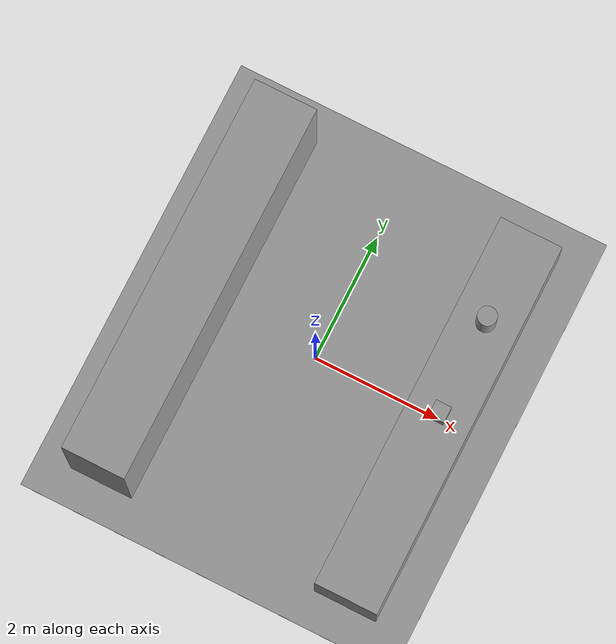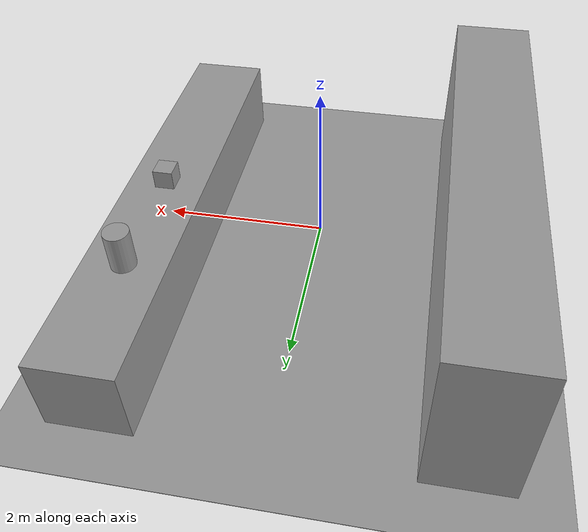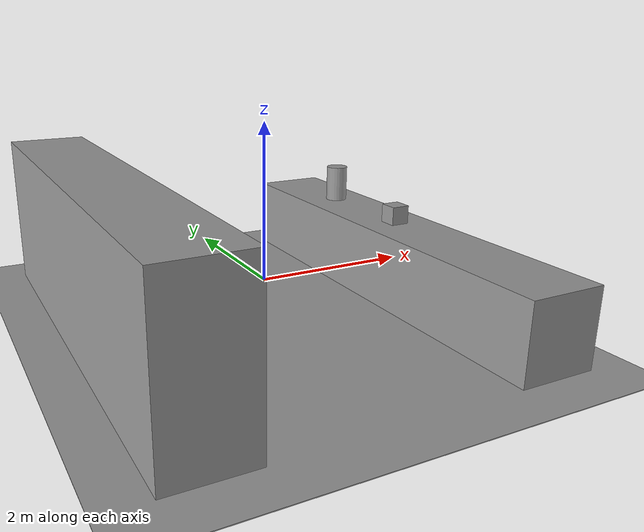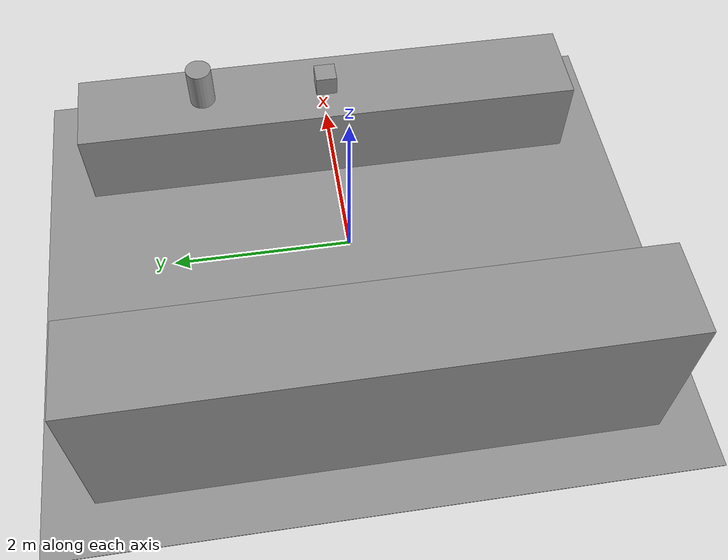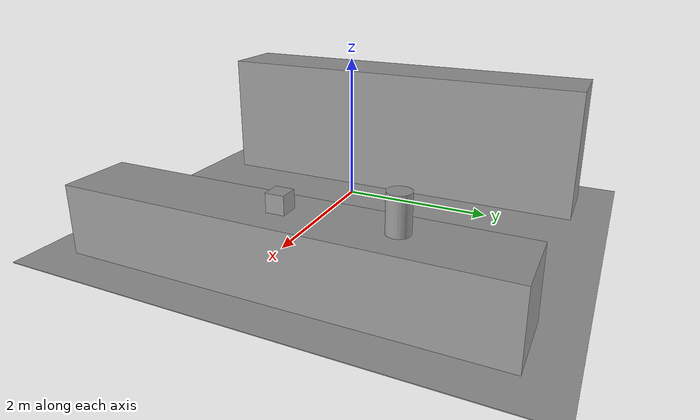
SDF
<?xml version='1.0'?>
<sdf version='1.6'>
  <model name='workspace1'>
    <link name='link_0'>
      <inertial>
        <mass>1</mass>
        <inertia>
          <ixx>0.166667</ixx>
          <ixy>0</ixy>
          <ixz>0</ixz>
          <iyy>0.166667</iyy>
          <iyz>0</iyz>
          <izz>0.166667</izz>
        </inertia>
        <pose frame=''>0 0 0 0 -0 0</pose>
      </inertial>
      <pose frame=''>0 -0 -0.503333 0 -0 0</pose>
      <gravity>1</gravity>
      <self_collide>0</self_collide>
      <kinematic>0</kinematic>
      <enable_wind>0</enable_wind>
      <visual name='visual'>
        <pose frame=''>0 0 0 0 -0 0</pose>
        <geometry>
          <box>
            <size>20 20 0.01</size>
          </box>
        </geometry>
        <material>
          <lighting>1</lighting>
          <script>
            <uri>file://media/materials/scripts/gazebo.material</uri>
            <name>Gazebo/Grey</name>
          </script>
          <shader type='vertex'>
            <normal_map>__default__</normal_map>
          </shader>
          <ambient>0.3 0.3 0.3 1</ambient>
          <diffuse>0.7 0.7 0.7 1</diffuse>
          <specular>0.01 0.01 0.01 1</specular>
          <emissive>0 0 0 1</emissive>
        </material>
        <transparency>0</transparency>
        <cast_shadows>1</cast_shadows>
      </visual>
      <collision name='collision'>
        <laser_retro>0</laser_retro>
        <max_contacts>10</max_contacts>
        <pose frame=''>0 0 0 0 -0 0</pose>
        <geometry>
          <box>
            <size>20 20 0.01</size>
          </box>
        </geometry>
        <surface>
          <friction>
            <ode>
              <mu>1</mu>
              <mu2>1</mu2>
              <fdir1>0 0 0</fdir1>
              <slip1>0</slip1>
              <slip2>0</slip2>
            </ode>
            <torsional>
              <coefficient>1</coefficient>
              <patch_radius>0</patch_radius>
              <surface_radius>0</surface_radius>
              <use_patch_radius>1</use_patch_radius>
              <ode>
                <slip>0</slip>
              </ode>
            </torsional>
          </friction>
          <bounce>
            <restitution_coefficient>0</restitution_coefficient>
            <threshold>1e+06</threshold>
          </bounce>
          <contact>
            <collide_without_contact>0</collide_without_contact>
            <collide_without_contact_bitmask>1</collide_without_contact_bitmask>
            <collide_bitmask>1</collide_bitmask>
            <ode>
              <soft_cfm>0</soft_cfm>
              <soft_erp>0.2</soft_erp>
              <kp>1e+13</kp>
              <kd>1</kd>
              <max_vel>0.01</max_vel>
              <min_depth>0</min_depth>
            </ode>
            <bullet>
              <split_impulse>1</split_impulse>
              <split_impulse_penetration_threshold>-0.01</split_impulse_penetration_threshold>
              <soft_cfm>0</soft_cfm>
              <soft_erp>0.2</soft_erp>
              <kp>1e+13</kp>
              <kd>1</kd>
            </bullet>
          </contact>
        </surface>
      </collision>
    </link>
    <link name='link_1'>
      <inertial>
        <mass>1</mass>
        <inertia>
          <ixx>0.166667</ixx>
          <ixy>0</ixy>
          <ixz>0</ixz>
          <iyy>0.166667</iyy>
          <iyz>0</iyz>
          <izz>0.166667</izz>
        </inertia>
        <pose frame=''>0 0 0 0 -0 0</pose>
      </inertial>
      <pose frame=''>2 -0 0.001667 0 -0 0</pose>
      <gravity>1</gravity>
      <self_collide>0</self_collide>
      <kinematic>0</kinematic>
      <enable_wind>0</enable_wind>
      <visual name='visual'>
        <pose frame=''>0 0 0 0 -0 0</pose>
        <geometry>
          <box>
            <size>1 6 1</size>
          </box>
        </geometry>
        <material>
          <lighting>1</lighting>
          <script>
            <uri>file://media/materials/scripts/gazebo.material</uri>
            <name>Gazebo/Grey</name>
          </script>
          <shader type='vertex'>
            <normal_map>__default__</normal_map>
          </shader>
          <ambient>0.3 0.3 0.3 1</ambient>
          <diffuse>0.7 0.7 0.7 1</diffuse>
          <specular>0.01 0.01 0 1</specular>
          <emissive>0 0 0 1</emissive>
        </material>
        <transparency>0</transparency>
        <cast_shadows>1</cast_shadows>
      </visual>
      <collision name='collision'>
        <laser_retro>0</laser_retro>
        <max_contacts>10</max_contacts>
        <pose frame=''>0 0 0 0 -0 0</pose>
        <geometry>
          <box>
            <size>1 6 1</size>
          </box>
        </geometry>
        <surface>
          <friction>
            <ode>
              <mu>1</mu>
              <mu2>1</mu2>
              <fdir1>0 0 0</fdir1>
              <slip1>0</slip1>
              <slip2>0</slip2>
            </ode>
            <torsional>
              <coefficient>1</coefficient>
              <patch_radius>0</patch_radius>
              <surface_radius>0</surface_radius>
              <use_patch_radius>1</use_patch_radius>
              <ode>
                <slip>0</slip>
              </ode>
            </torsional>
          </friction>
          <bounce>
            <restitution_coefficient>0</restitution_coefficient>
            <threshold>1e+06</threshold>
          </bounce>
          <contact>
            <collide_without_contact>0</collide_without_contact>
            <collide_without_contact_bitmask>1</collide_without_contact_bitmask>
            <collide_bitmask>1</collide_bitmask>
            <ode>
              <soft_cfm>0</soft_cfm>
              <soft_erp>0.2</soft_erp>
              <kp>1e+13</kp>
              <kd>1</kd>
              <max_vel>0.01</max_vel>
              <min_depth>0</min_depth>
            </ode>
            <bullet>
              <split_impulse>1</split_impulse>
              <split_impulse_penetration_threshold>-0.01</split_impulse_penetration_threshold>
              <soft_cfm>0</soft_cfm>
              <soft_erp>0.2</soft_erp>
              <kp>1e+13</kp>
              <kd>1</kd>
            </bullet>
          </contact>
        </surface>
      </collision>
    </link>
    <link name='link_1_clone'>
      <inertial>
        <mass>1</mass>
        <inertia>
          <ixx>0.166667</ixx>
          <ixy>0</ixy>
          <ixz>0</ixz>
          <iyy>0.166667</iyy>
          <iyz>0</iyz>
          <izz>0.166667</izz>
        </inertia>
        <pose frame=''>0 0 0 0 -0 0</pose>
      </inertial>
      <pose frame=''>-2 -0 0.501667 0 -0 0</pose>
      <gravity>1</gravity>
      <self_collide>0</self_collide>
      <kinematic>0</kinematic>
      <enable_wind>0</enable_wind>
      <visual name='visual'>
        <pose frame=''>0 0 0 0 -0 0</pose>
        <geometry>
          <box>
            <size>1 6 2</size>
          </box>
        </geometry>
        <material>
          <lighting>1</lighting>
          <script>
            <uri>file://media/materials/scripts/gazebo.material</uri>
            <name>Gazebo/Grey</name>
          </script>
          <shader type='vertex'>
            <normal_map>__default__</normal_map>
          </shader>
          <ambient>0.3 0.3 0.3 1</ambient>
          <diffuse>0.7 0.7 0.7 1</diffuse>
          <specular>0.3 0.01 0 1</specular>
          <emissive>0 0 0 1</emissive>
        </material>
        <transparency>0</transparency>
        <cast_shadows>1</cast_shadows>
      </visual>
      <collision name='collision'>
        <laser_retro>0</laser_retro>
        <max_contacts>10</max_contacts>
        <pose frame=''>0 0 0 0 -0 0</pose>
        <geometry>
          <box>
            <size>1 6 2</size>
          </box>
        </geometry>
        <surface>
          <friction>
            <ode>
              <mu>1</mu>
              <mu2>1</mu2>
              <fdir1>0 0 0</fdir1>
              <slip1>0</slip1>
              <slip2>0</slip2>
            </ode>
            <torsional>
              <coefficient>1</coefficient>
              <patch_radius>0</patch_radius>
              <surface_radius>0</surface_radius>
              <use_patch_radius>1</use_patch_radius>
              <ode>
                <slip>0</slip>
              </ode>
            </torsional>
          </friction>
          <bounce>
            <restitution_coefficient>0</restitution_coefficient>
            <threshold>1e+06</threshold>
          </bounce>
          <contact>
            <collide_without_contact>0</collide_without_contact>
            <collide_without_contact_bitmask>1</collide_without_contact_bitmask>
            <collide_bitmask>1</collide_bitmask>
            <ode>
              <soft_cfm>0</soft_cfm>
              <soft_erp>0.2</soft_erp>
              <kp>1e+13</kp>
              <kd>1</kd>
              <max_vel>0.01</max_vel>
              <min_depth>0</min_depth>
            </ode>
            <bullet>
              <split_impulse>1</split_impulse>
              <split_impulse_penetration_threshold>-0.01</split_impulse_penetration_threshold>
              <soft_cfm>0</soft_cfm>
              <soft_erp>0.2</soft_erp>
              <kp>1e+13</kp>
              <kd>1</kd>
            </bullet>
          </contact>
        </surface>
      </collision>
    </link>
    <link name='link_2'>
      <inertial>
        <mass>1</mass>
        <inertia>
          <ixx>0.145833</ixx>
          <ixy>0</ixy>
          <ixz>0</ixz>
          <iyy>0.145833</iyy>
          <iyz>0</iyz>
          <izz>0.125</izz>
        </inertia>
        <pose frame=''>0 0 0 0 -0 0</pose>
      </inertial>
      <pose frame=''>2 1.5 0.76 0 -0 0</pose>
      <gravity>1</gravity>
      <self_collide>0</self_collide>
      <kinematic>0</kinematic>
      <enable_wind>0</enable_wind>
      <visual name='visual'>
        <pose frame=''>0 0 0 0 -0 0</pose>
        <geometry>
          <cylinder>
            <radius>0.15</radius>
            <length>0.5</length>
          </cylinder>
        </geometry>
        <material>
          <lighting>1</lighting>
          <script>
            <uri>file://media/materials/scripts/gazebo.material</uri>
            <name>Gazebo/Grey</name>
          </script>
          <shader type='vertex'>
            <normal_map>__default__</normal_map>
          </shader>
          <ambient>0.3 0.3 0.3 1</ambient>
          <diffuse>0.7 0.7 0.7 1</diffuse>
          <specular>0.01 0.01 0.01 1</specular>
          <emissive>0 0 0 1</emissive>
        </material>
        <transparency>0</transparency>
        <cast_shadows>1</cast_shadows>
      </visual>
      <collision name='collision'>
        <laser_retro>0</laser_retro>
        <max_contacts>10</max_contacts>
        <pose frame=''>0 0 0 0 -0 0</pose>
        <geometry>
          <cylinder>
            <radius>0.15</radius>
            <length>0.5</length>
          </cylinder>
        </geometry>
        <surface>
          <friction>
            <ode>
              <mu>1</mu>
              <mu2>1</mu2>
              <fdir1>0 0 0</fdir1>
              <slip1>0</slip1>
              <slip2>0</slip2>
            </ode>
            <torsional>
              <coefficient>1</coefficient>
              <patch_radius>0</patch_radius>
              <surface_radius>0</surface_radius>
              <use_patch_radius>1</use_patch_radius>
              <ode>
                <slip>0</slip>
              </ode>
            </torsional>
          </friction>
          <bounce>
            <restitution_coefficient>0</restitution_coefficient>
            <threshold>1e+06</threshold>
          </bounce>
          <contact>
            <collide_without_contact>0</collide_without_contact>
            <collide_without_contact_bitmask>1</collide_without_contact_bitmask>
            <collide_bitmask>1</collide_bitmask>
            <ode>
              <soft_cfm>0</soft_cfm>
              <soft_erp>0.2</soft_erp>
              <kp>1e+13</kp>
              <kd>1</kd>
              <max_vel>0.01</max_vel>
              <min_depth>0</min_depth>
            </ode>
            <bullet>
              <split_impulse>1</split_impulse>
              <split_impulse_penetration_threshold>-0.01</split_impulse_penetration_threshold>
              <soft_cfm>0</soft_cfm>
              <soft_erp>0.2</soft_erp>
              <kp>1e+13</kp>
              <kd>1</kd>
            </bullet>
          </contact>
        </surface>
      </collision>
    </link>
    <link name='link_3'>
      <inertial>
        <mass>1</mass>
        <inertia>
          <ixx>0.166667</ixx>
          <ixy>0</ixy>
          <ixz>0</ixz>
          <iyy>0.166667</iyy>
          <iyz>0</iyz>
          <izz>0.166667</izz>
        </inertia>
        <pose frame=''>0 0 0 0 -0 0</pose>
      </inertial>
      <pose frame=''>2 -0 0.625 0 -0 0</pose>
      <gravity>1</gravity>
      <self_collide>0</self_collide>
      <kinematic>0</kinematic>
      <enable_wind>0</enable_wind>
      <visual name='visual'>
        <pose frame=''>0 0 0 0 -0 0</pose>
        <geometry>
          <box>
            <size>0.25 0.25 0.25</size>
          </box>
        </geometry>
        <material>
          <lighting>1</lighting>
          <script>
            <uri>file://media/materials/scripts/gazebo.material</uri>
            <name>Gazebo/Grey</name>
          </script>
          <shader type='vertex'>
            <normal_map>__default__</normal_map>
          </shader>
          <ambient>0.3 0.3 0.3 1</ambient>
          <diffuse>0.7 0.7 0.7 1</diffuse>
          <specular>0.01 0.01 0.01 1</specular>
          <emissive>0 0 0 1</emissive>
        </material>
        <transparency>0</transparency>
        <cast_shadows>1</cast_shadows>
      </visual>
      <collision name='collision'>
        <laser_retro>0</laser_retro>
        <max_contacts>10</max_contacts>
        <pose frame=''>0 0 0 0 -0 0</pose>
        <geometry>
          <box>
            <size>0.25 0.25 0.25</size>
          </box>
        </geometry>
        <surface>
          <friction>
            <ode>
              <mu>1</mu>
              <mu2>1</mu2>
              <fdir1>0 0 0</fdir1>
              <slip1>0</slip1>
              <slip2>0</slip2>
            </ode>
            <torsional>
              <coefficient>1</coefficient>
              <patch_radius>0</patch_radius>
              <surface_radius>0</surface_radius>
              <use_patch_radius>1</use_patch_radius>
              <ode>
                <slip>0</slip>
              </ode>
            </torsional>
          </friction>
          <bounce>
            <restitution_coefficient>0</restitution_coefficient>
            <threshold>1e+06</threshold>
          </bounce>
          <contact>
            <collide_without_contact>0</collide_without_contact>
            <collide_without_contact_bitmask>1</collide_without_contact_bitmask>
            <collide_bitmask>1</collide_bitmask>
            <ode>
              <soft_cfm>0</soft_cfm>
              <soft_erp>0.2</soft_erp>
              <kp>1e+13</kp>
              <kd>1</kd>
              <max_vel>0.01</max_vel>
              <min_depth>0</min_depth>
            </ode>
            <bullet>
              <split_impulse>1</split_impulse>
              <split_impulse_penetration_threshold>-0.01</split_impulse_penetration_threshold>
              <soft_cfm>0</soft_cfm>
              <soft_erp>0.2</soft_erp>
              <kp>1e+13</kp>
              <kd>1</kd>
            </bullet>
          </contact>
        </surface>
      </collision>
    </link>
    <joint name='link_0_JOINT_0' type='fixed'>
      <parent>link_0</parent>
      <child>link_1</child>
      <pose frame=''>0 0 0 0 -0 0</pose>
      <physics>
        <ode>
          <limit>
            <cfm>0</cfm>
            <erp>0.2</erp>
          </limit>
          <suspension>
            <cfm>0</cfm>
            <erp>0.2</erp>
          </suspension>
        </ode>
      </physics>
    </joint>
    <joint name='link_0_JOINT_1' type='fixed'>
      <parent>link_0</parent>
      <child>link_1_clone</child>
      <pose frame=''>0 0 0 0 -0 0</pose>
      <physics>
        <ode>
          <limit>
            <cfm>0</cfm>
            <erp>0.2</erp>
          </limit>
          <suspension>
            <cfm>0</cfm>
            <erp>0.2</erp>
          </suspension>
        </ode>
      </physics>
    </joint>
    <joint name='link_1_JOINT_2' type='fixed'>
      <parent>link_1</parent>
      <child>link_3</child>
      <pose frame=''>0 0 0 0 -0 0</pose>
      <physics>
        <ode>
          <limit>
            <cfm>0</cfm>
            <erp>0.2</erp>
          </limit>
          <suspension>
            <cfm>0</cfm>
            <erp>0.2</erp>
          </suspension>
        </ode>
      </physics>
    </joint>
    <joint name='link_1_JOINT_3' type='fixed'>
      <parent>link_1</parent>
      <child>link_2</child>
      <pose frame=''>0 0 0 0 -0 0</pose>
      <physics>
        <ode>
          <limit>
            <cfm>0</cfm>
            <erp>0.2</erp>
          </limit>
          <suspension>
            <cfm>0</cfm>
            <erp>0.2</erp>
          </suspension>
        </ode>
      </physics>
    </joint>
    <static>1</static>
    <allow_auto_disable>1</allow_auto_disable>
  </model>
</sdf>
